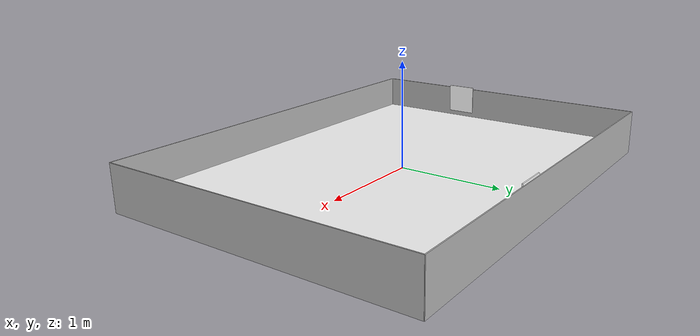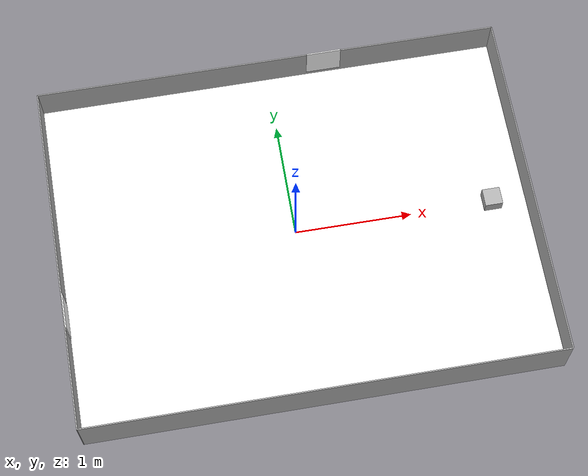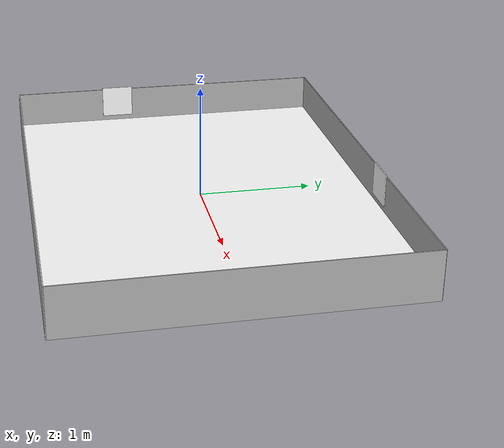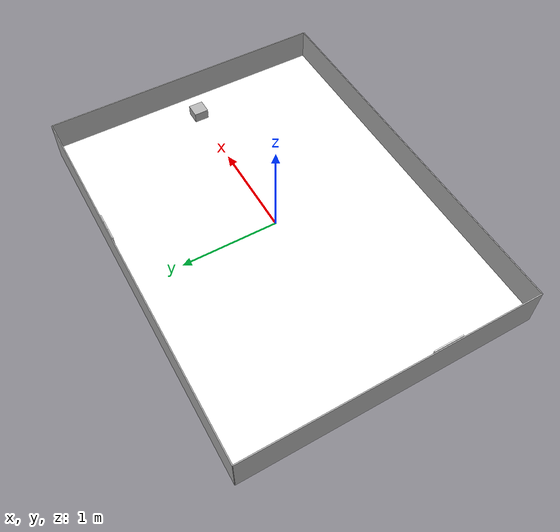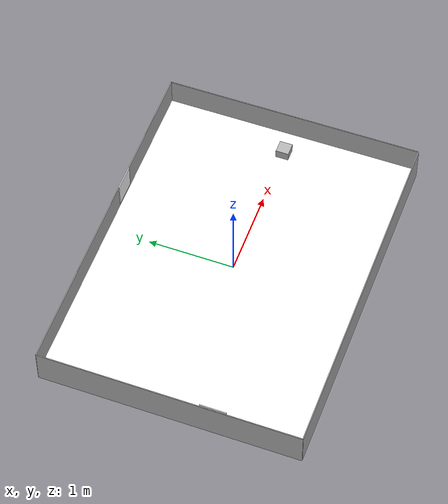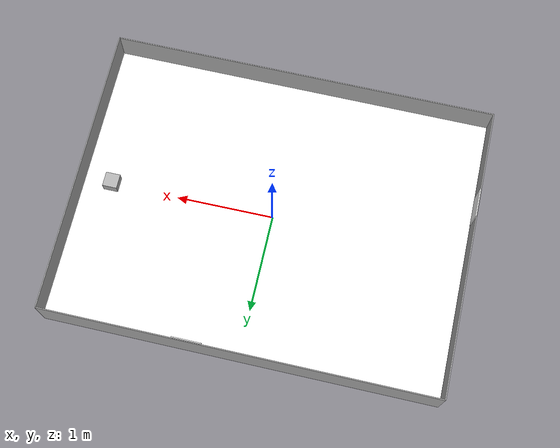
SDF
<sdf version="1.8">
 <world name="pinky_factory">
  <physics name="1ms" type="ignored">
   <max_step_size>0.001</max_step_size>
   <real_time_factor>1.0</real_time_factor>
  </physics>
  <plugin filename="gz-sim-physics-system" name="gz::sim::systems::Physics"/>
  <plugin filename="gz-sim-sensors-system" name="gz::sim::systems::Sensors">
   <render_engine>ogre2</render_engine>
  </plugin>
  <plugin filename="gz-sim-user-commands-system" name="gz::sim::systems::UserCommands"/>
  <plugin filename="gz-sim-scene-broadcaster-system" name="gz::sim::systems::SceneBroadcaster"/>
  <plugin filename="gz-sim-imu-system" name="gz::sim::systems::Imu"/>
  <light type="directional" name="sun">
   <cast_shadows>false</cast_shadows>
   <pose>0 0 2 0 0 0</pose>
   <diffuse>1 1 1 1</diffuse>
   <specular>1 1 1 1</specular>
   <attenuation><range>1000</range><constant>1</constant><linear>0</linear><quadratic>0</quadratic></attenuation>
   <direction>0 0 -1</direction>
  </light>
  <model name="logo">
   <static>true</static>
   <link name="logo_link">
    <visual name="logo_visual">
     <geometry><plane><normal>0 0 1</normal><size>4 3</size></plane></geometry>
     <material>
      <diffuse>1 1 1 1</diffuse>
      <specular>0.6 0.6 0.6 1</specular>
      <pbr><metal><albedo_map>file://img/pinklab_half.jpg</albedo_map></metal></pbr>
     </material>
    </visual>
    <collision name="logo_collision">
     <geometry><plane><normal>0 0 1</normal><size>4 2</size></plane></geometry>
     <surface><contact><collide_without_contact>true</collide_without_contact></contact></surface>
    </collision>
   </link>
  </model>
  <model name="robot_arm_box">
   <static>true</static>
   <pose>1.7 0 0 0 0 0</pose>
   <link name="robot_arm_box">
    <visual name="robot_arm_box_visual">
     <geometry><box><size>0.15 0.15 0.22</size></box></geometry>
     <material><diffuse>0.7 0.7 0.7 1</diffuse><specular>0.2 0.2 0.2 1</specular></material>
    </visual>
    <collision name="robot_arm_box_collision">
     <geometry><box><size>0.15 0.15 0.22</size></box></geometry>
    </collision>
   </link>
  </model>
  <model name="wall_front">
   <static>true</static>
   <pose>0 1.5 0.11 0 0 0</pose>
   <link name="wall_link_front">
    <visual name="wall_visual_front">
     <geometry><box><size>4 0.01 0.44</size></box></geometry>
     <material><diffuse>0.7 0.7 0.7 1</diffuse><specular>0.2 0.2 0.2 1</specular></material>
    </visual>
    <collision name="wall_collision_front"><geometry><box><size>4 0.01 0.44</size></box></geometry></collision>
   </link>
  </model>
  <model name="wall_back">
   <static>true</static>
   <pose>0 -1.5 0.11 0 0 3.14</pose>
   <link name="wall_link_back">
    <visual name="wall_visual_back">
     <geometry><box><size>4 0.01 0.44</size></box></geometry>
     <material><diffuse>0.7 0.7 0.7 1</diffuse><specular>0.2 0.2 0.2 1</specular></material>
    </visual>
    <collision name="wall_collision_back"><geometry><box><size>4 0.01 0.44</size></box></geometry></collision>
   </link>
  </model>
  <model name="wall_left">
   <static>true</static>
   <pose>-2 0 0.11 0 0 1.57</pose>
   <link name="wall_link_left">
    <visual name="wall_visual_left">
     <geometry><box><size>3 0.01 0.44</size></box></geometry>
     <material><diffuse>0.7 0.7 0.7 1</diffuse><specular>0.2 0.2 0.2 1</specular></material>
    </visual>
    <collision name="wall_collision_left"><geometry><box><size>3 0.01 0.44</size></box></geometry></collision>
   </link>
  </model>
  <model name="wall_right">
   <static>true</static>
   <pose>2 0 0.11 0 0 -1.57</pose>
   <link name="wall_link_right">
    <visual name="wall_visual_right">
     <geometry><box><size>3 0.01 0.44</size></box></geometry>
     <material><diffuse>0.7 0.7 0.7 1</diffuse><specular>0.2 0.2 0.2 1</specular></material>
    </visual>
    <collision name="wall_collision_right"><geometry><box><size>3 0.01 0.44</size></box></geometry></collision>
   </link>
  </model>
  <model name="marker_A">
   <static>true</static>
   <pose>0.5 1.492 0.2 0 0 0</pose>
   <link name="marker_A_link">
    <visual name="marker_A_visual">
     <geometry><box><size>0.3 0.01 0.3</size></box></geometry>
     <material>
      <diffuse>1 1 1 1</diffuse>
      <specular>0.1 0.1 0.1 1</specular>
      <pbr><metal><albedo_map>file://img/marker_0.png</albedo_map></metal></pbr>
     </material>
    </visual>
    <collision name="marker_A_collision"><geometry><box><size>0.3 0.01 0.3</size></box></geometry></collision>
   </link>
  </model>
  <model name="marker_B">
   <static>true</static>
   <pose>-1.992 -0.5 0.2 0 0 1.5708</pose>
   <link name="marker_B_link">
    <visual name="marker_B_visual">
     <geometry><box><size>0.3 0.01 0.3</size></box></geometry>
     <material>
      <diffuse>1 1 1 1</diffuse>
      <specular>0.1 0.1 0.1 1</specular>
      <pbr><metal><albedo_map>file://img/marker_1.png</albedo_map></metal></pbr>
     </material>
    </visual>
    <collision name="marker_B_collision"><geometry><box><size>0.3 0.01 0.3</size></box></geometry></collision>
   </link>
  </model>
  <model name="camera">
   <static>true</static>
   <pose>0 0 1.6 0 1.57 1.57</pose>
   <link name="link">
    <pose>0.05 0.05 0.05 0 0 0</pose>
    <inertial>
     <mass>0.1</mass>
     <inertia><ixx>0.000166667</ixx><iyy>0.000166667</iyy><izz>0.000166667</izz></inertia>
    </inertial>
    <collision name="collision"><geometry><box><size>0.1 0.1 0.1</size></box></geometry></collision>
    <sensor name="camera" type="camera">
     <camera>
      <horizontal_fov>2.094</horizontal_fov>
      <image><width>640</width><height>480</height></image>
      <clip><near>0.1</near><far>100</far></clip>
     </camera>
     <always_on>1</always_on>
     <update_rate>30</update_rate>
     <visualize>true</visualize>
     <topic>camera</topic>
    </sensor>
   </link>
  </model>
 </world>
</sdf>
